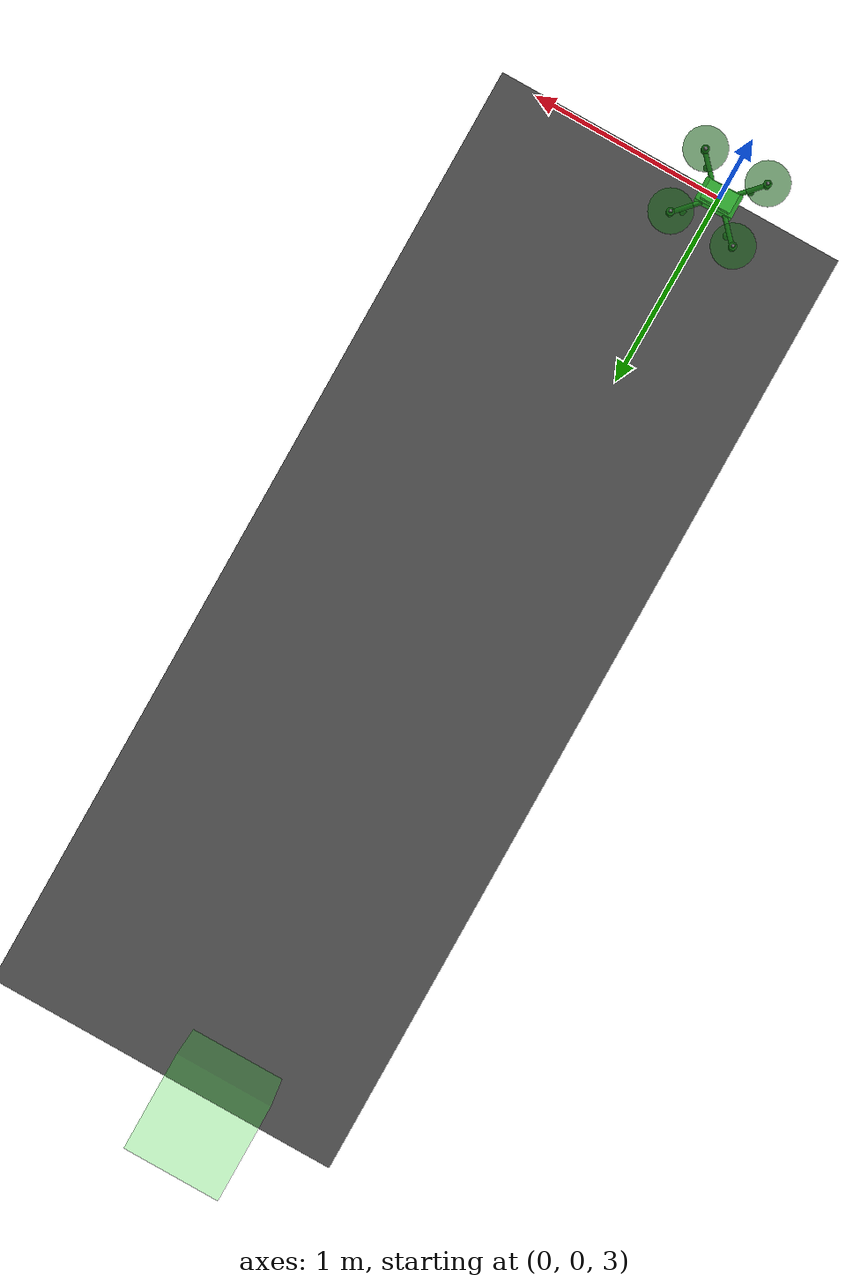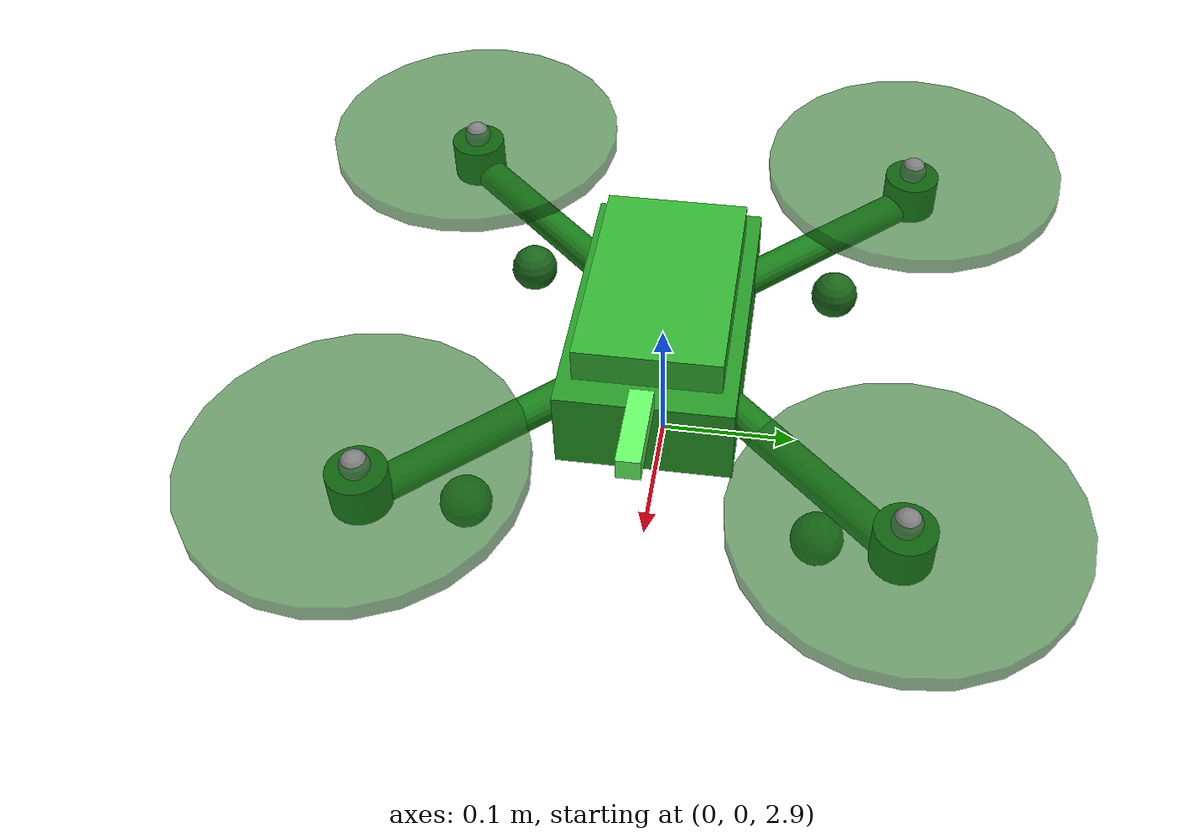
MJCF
<mujoco model="QuadDrone_Benchmark">

  <compiler autolimits="true"/>

  <option timestep="0.005" density="1.225" viscosity="1.8e-5" gravity="0 0 -9.81">
    <flag warmstart="enable"/>
  </option>

  <default>
    <joint damping="0.001"/>
    <!-- Default: collide with nothing -->
    <geom contype="0" conaffinity="0"/>
  </default>

  <asset>
    <texture name="grid" type="2d" builtin="checker" rgb1="0.35 0.35 0.35" rgb2="0.25 0.25 0.25" width="512" height="512"/>
    <texture name="sky" type="skybox" builtin="gradient" rgb1="0.6 0.7 0.9" rgb2="0.2 0.3 0.5" width="512" height="512"/>
    <material name="ground_mat" texture="grid" texrepeat="40 40" reflectance="0.1"/>
  </asset>

  <worldbody>
    <!-- Ground: contype=1 so drones can land -->
    <geom name="ground" type="plane" size="200 200 0.1" material="ground_mat" contype="1" conaffinity="1"/>
    <light name="sun" directional="true" pos="0 0 10" dir="0.3 0.3 -1" diffuse="0.9 0.9 0.9" castshadow="true"/>
    <light name="fill" directional="true" pos="-5 -5 8" dir="0.5 0.5 -1" diffuse="0.3 0.3 0.3"/>

    <!-- DRONE PID - GREEN (contype=2, conaffinity=1 = collide ground only) -->
    <body name="drone_pid" pos="0 0 3">
      <freejoint name="root_pid"/>
      <inertial pos="0 0 0" mass="1.5" diaginertia="0.02 0.02 0.03"/>

      <geom name="chassis_pid" type="box" size="0.1 0.06 0.03" rgba="0.15 0.6 0.15 1" mass="1.0" contype="2" conaffinity="1"/>
      <geom name="cover_pid" type="box" size="0.08 0.05 0.015" pos="0 0 0.04" rgba="0.2 0.7 0.2 1"/>

      <geom type="capsule" fromto="0.05 -0.04 0 0.17 -0.17 0" size="0.012" rgba="0.1 0.5 0.1 1"/>
      <geom type="capsule" fromto="0.05 0.04 0 0.17 0.17 0" size="0.012" rgba="0.1 0.5 0.1 1"/>
      <geom type="capsule" fromto="-0.05 -0.04 0 -0.17 -0.17 0" size="0.012" rgba="0.1 0.5 0.1 1"/>
      <geom type="capsule" fromto="-0.05 0.04 0 -0.17 0.17 0" size="0.012" rgba="0.1 0.5 0.1 1"/>

      <geom type="cylinder" size="0.02 0.015" pos="0.17 -0.17 0.01" rgba="0.05 0.4 0.05 1"/>
      <geom type="cylinder" size="0.02 0.015" pos="0.17 0.17 0.01" rgba="0.05 0.4 0.05 1"/>
      <geom type="cylinder" size="0.02 0.015" pos="-0.17 0.17 0.01" rgba="0.05 0.4 0.05 1"/>
      <geom type="cylinder" size="0.02 0.015" pos="-0.17 -0.17 0.01" rgba="0.05 0.4 0.05 1"/>

      <geom type="cylinder" size="0.11 0.006" pos="0.17 -0.17 0.03" rgba="0.1 0.4 0.1 0.6"/>
      <geom type="cylinder" size="0.11 0.006" pos="0.17 0.17 0.03" rgba="0.1 0.4 0.1 0.6"/>
      <geom type="cylinder" size="0.11 0.006" pos="-0.17 0.17 0.03" rgba="0.1 0.4 0.1 0.6"/>
      <geom type="cylinder" size="0.11 0.006" pos="-0.17 -0.17 0.03" rgba="0.1 0.4 0.1 0.6"/>

      <site name="thrust_fr_pid" pos="0.17 -0.17 0.03" size="0.01"/>
      <site name="thrust_fl_pid" pos="0.17 0.17 0.03" size="0.01"/>
      <site name="thrust_rl_pid" pos="-0.17 0.17 0.03" size="0.01"/>
      <site name="thrust_rr_pid" pos="-0.17 -0.17 0.03" size="0.01"/>

      <geom type="box" size="0.03 0.008 0.008" pos="0.13 0 0.04" rgba="0.4 1 0.4 1"/>

      <geom type="sphere" size="0.018" pos="0.12 -0.12 -0.06" rgba="0.1 0.4 0.1 1" contype="2" conaffinity="1"/>
      <geom type="sphere" size="0.018" pos="0.12 0.12 -0.06" rgba="0.1 0.4 0.1 1" contype="2" conaffinity="1"/>
      <geom type="sphere" size="0.018" pos="-0.12 0.12 -0.06" rgba="0.1 0.4 0.1 1" contype="2" conaffinity="1"/>
      <geom type="sphere" size="0.018" pos="-0.12 -0.12 -0.06" rgba="0.1 0.4 0.1 1" contype="2" conaffinity="1"/>
    </body>

    <!-- TARGET PID - GREEN -->
    <body name="target_pid" mocap="true" pos="0 5 3">
      <geom type="box" size="0.25 0.25 0.25" rgba="0.2 0.9 0.2 0.3"/>
      <geom type="sphere" size="0.1" rgba="0.3 1 0.3 0.8"/>
    </body>

    <!-- DRONE DAGGER - BLUE -->
    <body name="drone_dagger" pos="0 0 3">
      <freejoint name="root_dagger"/>
      <inertial pos="0 0 0" mass="1.5" diaginertia="0.02 0.02 0.03"/>

      <geom name="chassis_dagger" type="box" size="0.1 0.06 0.03" rgba="0.15 0.15 0.6 1" mass="1.0" contype="2" conaffinity="1"/>
      <geom name="cover_dagger" type="box" size="0.08 0.05 0.015" pos="0 0 0.04" rgba="0.2 0.2 0.7 1"/>

      <geom type="capsule" fromto="0.05 -0.04 0 0.17 -0.17 0" size="0.012" rgba="0.1 0.1 0.5 1"/>
      <geom type="capsule" fromto="0.05 0.04 0 0.17 0.17 0" size="0.012" rgba="0.1 0.1 0.5 1"/>
      <geom type="capsule" fromto="-0.05 -0.04 0 -0.17 -0.17 0" size="0.012" rgba="0.1 0.1 0.5 1"/>
      <geom type="capsule" fromto="-0.05 0.04 0 -0.17 0.17 0" size="0.012" rgba="0.1 0.1 0.5 1"/>

      <geom type="cylinder" size="0.02 0.015" pos="0.17 -0.17 0.01" rgba="0.05 0.05 0.4 1"/>
      <geom type="cylinder" size="0.02 0.015" pos="0.17 0.17 0.01" rgba="0.05 0.05 0.4 1"/>
      <geom type="cylinder" size="0.02 0.015" pos="-0.17 0.17 0.01" rgba="0.05 0.05 0.4 1"/>
      <geom type="cylinder" size="0.02 0.015" pos="-0.17 -0.17 0.01" rgba="0.05 0.05 0.4 1"/>

      <geom type="cylinder" size="0.11 0.006" pos="0.17 -0.17 0.03" rgba="0.1 0.1 0.4 0.6"/>
      <geom type="cylinder" size="0.11 0.006" pos="0.17 0.17 0.03" rgba="0.1 0.1 0.4 0.6"/>
      <geom type="cylinder" size="0.11 0.006" pos="-0.17 0.17 0.03" rgba="0.1 0.1 0.4 0.6"/>
      <geom type="cylinder" size="0.11 0.006" pos="-0.17 -0.17 0.03" rgba="0.1 0.1 0.4 0.6"/>

      <site name="thrust_fr_dagger" pos="0.17 -0.17 0.03" size="0.01"/>
      <site name="thrust_fl_dagger" pos="0.17 0.17 0.03" size="0.01"/>
      <site name="thrust_rl_dagger" pos="-0.17 0.17 0.03" size="0.01"/>
      <site name="thrust_rr_dagger" pos="-0.17 -0.17 0.03" size="0.01"/>

      <geom type="box" size="0.03 0.008 0.008" pos="0.13 0 0.04" rgba="0.4 0.4 1 1"/>

      <geom type="sphere" size="0.018" pos="0.12 -0.12 -0.06" rgba="0.1 0.1 0.4 1" contype="2" conaffinity="1"/>
      <geom type="sphere" size="0.018" pos="0.12 0.12 -0.06" rgba="0.1 0.1 0.4 1" contype="2" conaffinity="1"/>
      <geom type="sphere" size="0.018" pos="-0.12 0.12 -0.06" rgba="0.1 0.1 0.4 1" contype="2" conaffinity="1"/>
      <geom type="sphere" size="0.018" pos="-0.12 -0.12 -0.06" rgba="0.1 0.1 0.4 1" contype="2" conaffinity="1"/>
    </body>

    <!-- TARGET DAGGER - BLUE -->
    <body name="target_dagger" mocap="true" pos="0 5 3">
      <geom type="box" size="0.25 0.25 0.25" rgba="0.2 0.2 0.9 0.3"/>
      <geom type="sphere" size="0.1" rgba="0.3 0.3 1 0.8"/>
    </body>

    <!-- DRONE PPO BASE - YELLOW (bulk trained, no fine-tuning) -->
    <body name="drone_ppo_base" pos="0 0 3">
      <freejoint name="root_ppo_base"/>
      <inertial pos="0 0 0" mass="1.5" diaginertia="0.02 0.02 0.03"/>

      <geom name="chassis_ppo_base" type="box" size="0.1 0.06 0.03" rgba="0.7 0.6 0.1 1" mass="1.0" contype="2" conaffinity="1"/>
      <geom name="cover_ppo_base" type="box" size="0.08 0.05 0.015" pos="0 0 0.04" rgba="0.8 0.7 0.15 1"/>

      <geom type="capsule" fromto="0.05 -0.04 0 0.17 -0.17 0" size="0.012" rgba="0.6 0.5 0.05 1"/>
      <geom type="capsule" fromto="0.05 0.04 0 0.17 0.17 0" size="0.012" rgba="0.6 0.5 0.05 1"/>
      <geom type="capsule" fromto="-0.05 -0.04 0 -0.17 -0.17 0" size="0.012" rgba="0.6 0.5 0.05 1"/>
      <geom type="capsule" fromto="-0.05 0.04 0 -0.17 0.17 0" size="0.012" rgba="0.6 0.5 0.05 1"/>

      <geom type="cylinder" size="0.02 0.015" pos="0.17 -0.17 0.01" rgba="0.5 0.4 0.02 1"/>
      <geom type="cylinder" size="0.02 0.015" pos="0.17 0.17 0.01" rgba="0.5 0.4 0.02 1"/>
      <geom type="cylinder" size="0.02 0.015" pos="-0.17 0.17 0.01" rgba="0.5 0.4 0.02 1"/>
      <geom type="cylinder" size="0.02 0.015" pos="-0.17 -0.17 0.01" rgba="0.5 0.4 0.02 1"/>

      <geom type="cylinder" size="0.11 0.006" pos="0.17 -0.17 0.03" rgba="0.5 0.45 0.1 0.6"/>
      <geom type="cylinder" size="0.11 0.006" pos="0.17 0.17 0.03" rgba="0.5 0.45 0.1 0.6"/>
      <geom type="cylinder" size="0.11 0.006" pos="-0.17 0.17 0.03" rgba="0.5 0.45 0.1 0.6"/>
      <geom type="cylinder" size="0.11 0.006" pos="-0.17 -0.17 0.03" rgba="0.5 0.45 0.1 0.6"/>

      <site name="thrust_fr_ppo_base" pos="0.17 -0.17 0.03" size="0.01"/>
      <site name="thrust_fl_ppo_base" pos="0.17 0.17 0.03" size="0.01"/>
      <site name="thrust_rl_ppo_base" pos="-0.17 0.17 0.03" size="0.01"/>
      <site name="thrust_rr_ppo_base" pos="-0.17 -0.17 0.03" size="0.01"/>

      <geom type="box" size="0.03 0.008 0.008" pos="0.13 0 0.04" rgba="1 0.9 0.3 1"/>

      <geom type="sphere" size="0.018" pos="0.12 -0.12 -0.06" rgba="0.5 0.4 0.05 1" contype="2" conaffinity="1"/>
      <geom type="sphere" size="0.018" pos="0.12 0.12 -0.06" rgba="0.5 0.4 0.05 1" contype="2" conaffinity="1"/>
      <geom type="sphere" size="0.018" pos="-0.12 0.12 -0.06" rgba="0.5 0.4 0.05 1" contype="2" conaffinity="1"/>
      <geom type="sphere" size="0.018" pos="-0.12 -0.12 -0.06" rgba="0.5 0.4 0.05 1" contype="2" conaffinity="1"/>
    </body>

    <!-- TARGET PPO BASE - YELLOW -->
    <body name="target_ppo_base" mocap="true" pos="0 5 3">
      <geom type="box" size="0.25 0.25 0.25" rgba="0.9 0.8 0.2 0.3"/>
      <geom type="sphere" size="0.1" rgba="1 0.9 0.3 0.8"/>
    </body>

    <!-- DRONE PPO - RED (fine-tuned) -->
    <body name="drone_ppo" pos="0 0 3">
      <freejoint name="root_ppo"/>
      <inertial pos="0 0 0" mass="1.5" diaginertia="0.02 0.02 0.03"/>

      <geom name="chassis_ppo" type="box" size="0.1 0.06 0.03" rgba="0.6 0.15 0.15 1" mass="1.0" contype="2" conaffinity="1"/>
      <geom name="cover_ppo" type="box" size="0.08 0.05 0.015" pos="0 0 0.04" rgba="0.7 0.2 0.2 1"/>

      <geom type="capsule" fromto="0.05 -0.04 0 0.17 -0.17 0" size="0.012" rgba="0.5 0.1 0.1 1"/>
      <geom type="capsule" fromto="0.05 0.04 0 0.17 0.17 0" size="0.012" rgba="0.5 0.1 0.1 1"/>
      <geom type="capsule" fromto="-0.05 -0.04 0 -0.17 -0.17 0" size="0.012" rgba="0.5 0.1 0.1 1"/>
      <geom type="capsule" fromto="-0.05 0.04 0 -0.17 0.17 0" size="0.012" rgba="0.5 0.1 0.1 1"/>

      <geom type="cylinder" size="0.02 0.015" pos="0.17 -0.17 0.01" rgba="0.4 0.05 0.05 1"/>
      <geom type="cylinder" size="0.02 0.015" pos="0.17 0.17 0.01" rgba="0.4 0.05 0.05 1"/>
      <geom type="cylinder" size="0.02 0.015" pos="-0.17 0.17 0.01" rgba="0.4 0.05 0.05 1"/>
      <geom type="cylinder" size="0.02 0.015" pos="-0.17 -0.17 0.01" rgba="0.4 0.05 0.05 1"/>

      <geom type="cylinder" size="0.11 0.006" pos="0.17 -0.17 0.03" rgba="0.4 0.1 0.1 0.6"/>
      <geom type="cylinder" size="0.11 0.006" pos="0.17 0.17 0.03" rgba="0.4 0.1 0.1 0.6"/>
      <geom type="cylinder" size="0.11 0.006" pos="-0.17 0.17 0.03" rgba="0.4 0.1 0.1 0.6"/>
      <geom type="cylinder" size="0.11 0.006" pos="-0.17 -0.17 0.03" rgba="0.4 0.1 0.1 0.6"/>

      <site name="thrust_fr_ppo" pos="0.17 -0.17 0.03" size="0.01"/>
      <site name="thrust_fl_ppo" pos="0.17 0.17 0.03" size="0.01"/>
      <site name="thrust_rl_ppo" pos="-0.17 0.17 0.03" size="0.01"/>
      <site name="thrust_rr_ppo" pos="-0.17 -0.17 0.03" size="0.01"/>

      <geom type="box" size="0.03 0.008 0.008" pos="0.13 0 0.04" rgba="1 0.4 0.4 1"/>

      <geom type="sphere" size="0.018" pos="0.12 -0.12 -0.06" rgba="0.4 0.1 0.1 1" contype="2" conaffinity="1"/>
      <geom type="sphere" size="0.018" pos="0.12 0.12 -0.06" rgba="0.4 0.1 0.1 1" contype="2" conaffinity="1"/>
      <geom type="sphere" size="0.018" pos="-0.12 0.12 -0.06" rgba="0.4 0.1 0.1 1" contype="2" conaffinity="1"/>
      <geom type="sphere" size="0.018" pos="-0.12 -0.12 -0.06" rgba="0.4 0.1 0.1 1" contype="2" conaffinity="1"/>
    </body>

    <!-- TARGET PPO - RED -->
    <body name="target_ppo" mocap="true" pos="0 5 3">
      <geom type="box" size="0.25 0.25 0.25" rgba="0.9 0.2 0.2 0.3"/>
      <geom type="sphere" size="0.1" rgba="1 0.3 0.3 0.8"/>
    </body>

  </worldbody>

  <!-- ACTUATORS -->
  <actuator>
    <motor name="motor_fr_pid" site="thrust_fr_pid" gear="0 0 1 0 0  0.02" ctrlrange="0 12"/>
    <motor name="motor_fl_pid" site="thrust_fl_pid" gear="0 0 1 0 0 -0.02" ctrlrange="0 12"/>
    <motor name="motor_rl_pid" site="thrust_rl_pid" gear="0 0 1 0 0  0.02" ctrlrange="0 12"/>
    <motor name="motor_rr_pid" site="thrust_rr_pid" gear="0 0 1 0 0 -0.02" ctrlrange="0 12"/>

    <motor name="motor_fr_dagger" site="thrust_fr_dagger" gear="0 0 1 0 0  0.02" ctrlrange="0 12"/>
    <motor name="motor_fl_dagger" site="thrust_fl_dagger" gear="0 0 1 0 0 -0.02" ctrlrange="0 12"/>
    <motor name="motor_rl_dagger" site="thrust_rl_dagger" gear="0 0 1 0 0  0.02" ctrlrange="0 12"/>
    <motor name="motor_rr_dagger" site="thrust_rr_dagger" gear="0 0 1 0 0 -0.02" ctrlrange="0 12"/>

    <motor name="motor_fr_ppo_base" site="thrust_fr_ppo_base" gear="0 0 1 0 0  0.02" ctrlrange="0 12"/>
    <motor name="motor_fl_ppo_base" site="thrust_fl_ppo_base" gear="0 0 1 0 0 -0.02" ctrlrange="0 12"/>
    <motor name="motor_rl_ppo_base" site="thrust_rl_ppo_base" gear="0 0 1 0 0  0.02" ctrlrange="0 12"/>
    <motor name="motor_rr_ppo_base" site="thrust_rr_ppo_base" gear="0 0 1 0 0 -0.02" ctrlrange="0 12"/>

    <motor name="motor_fr_ppo" site="thrust_fr_ppo" gear="0 0 1 0 0  0.02" ctrlrange="0 12"/>
    <motor name="motor_fl_ppo" site="thrust_fl_ppo" gear="0 0 1 0 0 -0.02" ctrlrange="0 12"/>
    <motor name="motor_rl_ppo" site="thrust_rl_ppo" gear="0 0 1 0 0  0.02" ctrlrange="0 12"/>
    <motor name="motor_rr_ppo" site="thrust_rr_ppo" gear="0 0 1 0 0 -0.02" ctrlrange="0 12"/>
  </actuator>

</mujoco>
